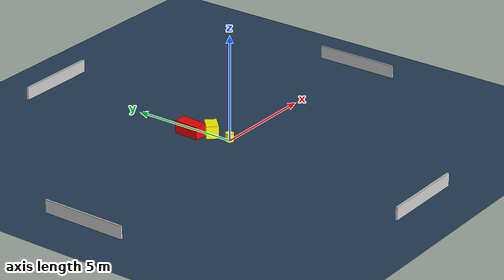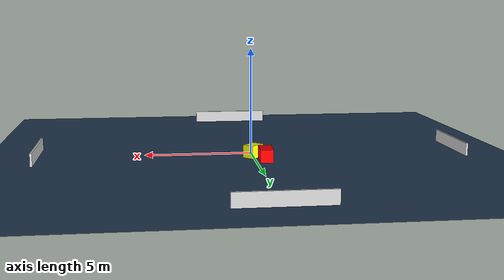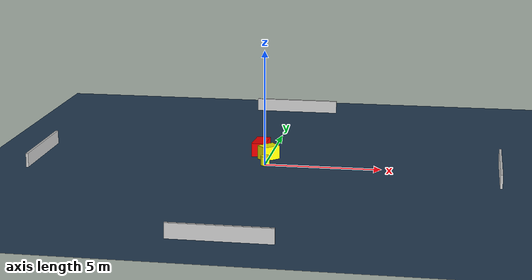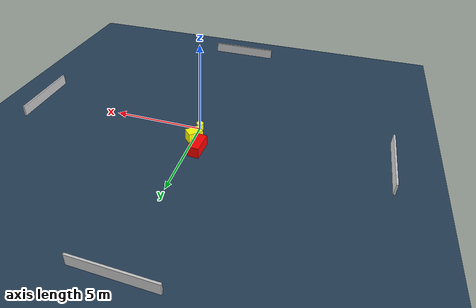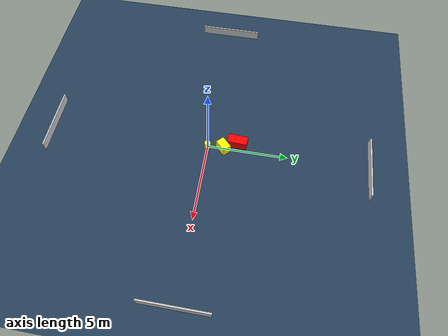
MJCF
<?xml version="1.0" ?>
<mujoco model="generated_environment">
  <option timestep="0.01" integrator="RK4" cone="elliptic"/>
  <default>
    <geom density="1"/>
  </default>
  <asset>
    <texture builtin="gradient" height="3072" name="skybox" rgb1="0.3 0.5 0.7" rgb2="0 0 0" type="skybox" width="512"/>
    <texture builtin="checker" height="300" name="groundplane" rgb1="0.2 0.3 0.4" rgb2="0.1 0.2 0.3" type="2d" width="300"/>
    <material name="groundplane" reflectance="0.2" texrepeat="5 5" texture="groundplane"/>
  </asset>
  <worldbody>
    <light dir="0 0 -1" directional="true" pos="0 0 1.5"/>
    <geom condim="3" friction="0.5 0.005 0.001" material="groundplane" name="floor" pos="0 0 0" size="0 0 0.05" type="plane"/>
    <body name="walls">
      <geom name="wall_1" condim="4" pos="-10.0 0.0 0.3" rgba="0.800000011920929 0.800000011920929 0.800000011920929 1.0" size="0.05 2.0 0.3" type="box"/>
      <geom name="wall_2" condim="4" pos="10.0 0.0 0.3" rgba="0.800000011920929 0.800000011920929 0.800000011920929 1.0" size="0.05 2.0 0.3" type="box"/>
      <geom name="wall_3" condim="4" pos="0.0 -10.0 0.3" rgba="0.800000011920929 0.800000011920929 0.800000011920929 1.0" size="2.0 0.05 0.3" type="box"/>
      <geom name="wall_4" condim="4" pos="0.0 10.0 0.3" rgba="0.800000011920929 0.800000011920929 0.800000011920929 1.0" size="2.0 0.05 0.3" type="box"/>
    </body>
    <body name="robot">
      <joint name="joint_x" type="slide" pos="0 0 0" axis="1 0 0"/>
      <joint name="joint_y" type="slide" pos="0 0 0" axis="0 1 0"/>
      <geom name="robot" type="cylinder" pos="0.0 0.0 0.2" size="0.2 0.2 0.0" mass="5.0" friction="1.0 0.005 0.0001" condim="4" rgba="1.0 1.0 0.0 1.0"/>
    </body>
    <body name="obstacle_1_movable">
      <geom name="obstacle_1_movable" condim="4" pos="-0.0017760384243782638 0.9982275628650766 0.3" euler="0 0 134.1708598273223" friction="0.0 0.005 0.001" rgba="1.0 1.0 0.0 1.0" size="0.27948152154142836 0.3994340976372329 0.3" type="box" mass="0.1"/>
      <joint type="free"/>
    </body>
    <body name="obstacle_2_static">
      <geom name="obstacle_2_static" condim="4" pos="-0.4746061467178814 1.8178619739731992 0.3" euler="0 0 266.6432882773717" friction="0.0 0.005 0.001" rgba="1.0 0.0 0.0 1.0" size="0.6137584244850864 0.2996768237311553 0.3" type="box"/>
    </body>
  </worldbody>
  <actuator>
    <motor name="actuator_x" joint="joint_x" gear="1" ctrlrange="-1 1"/>
    <motor name="actuator_y" joint="joint_y" gear="1" ctrlrange="-1 1"/>
  </actuator>
</mujoco>
